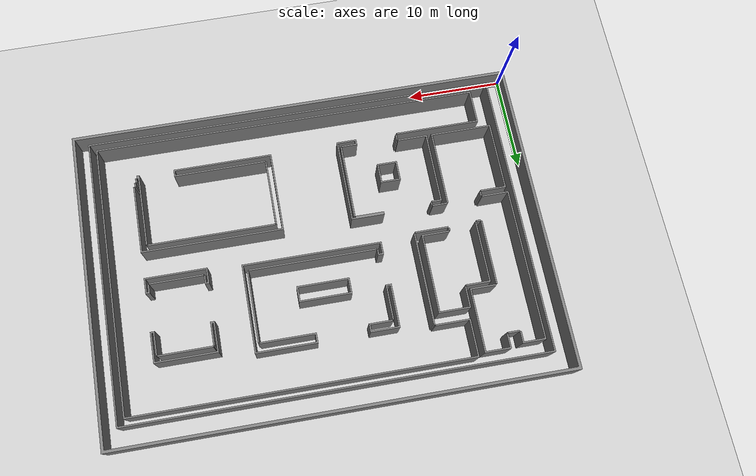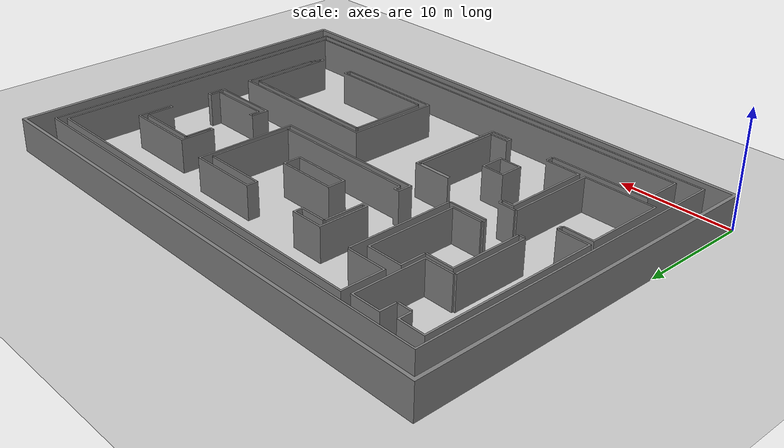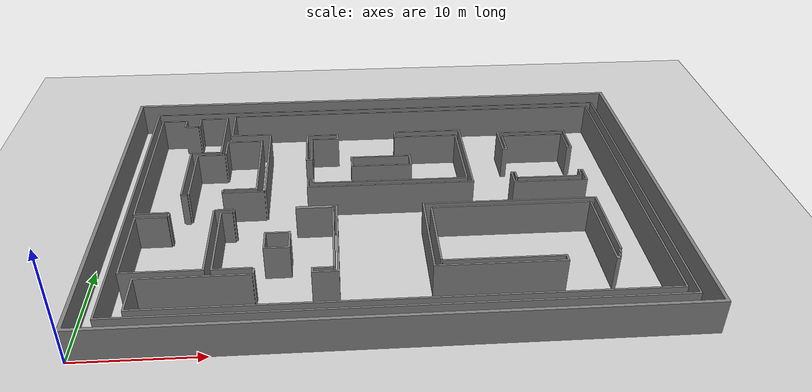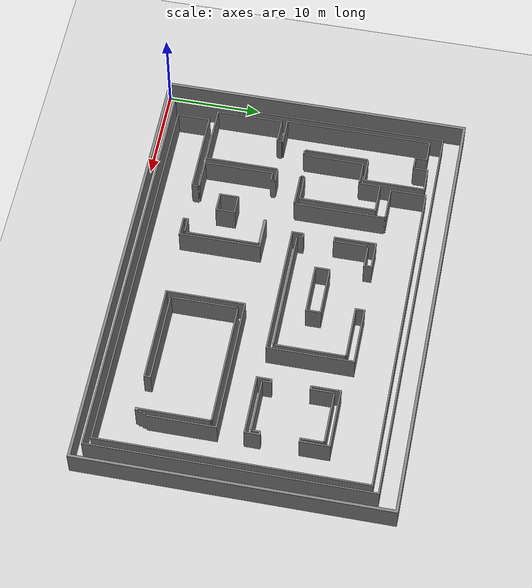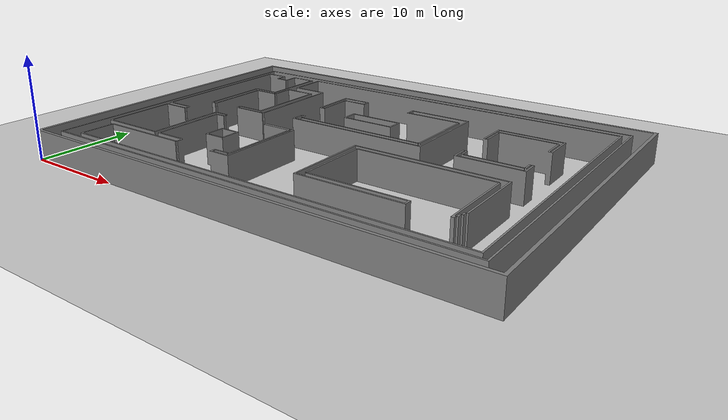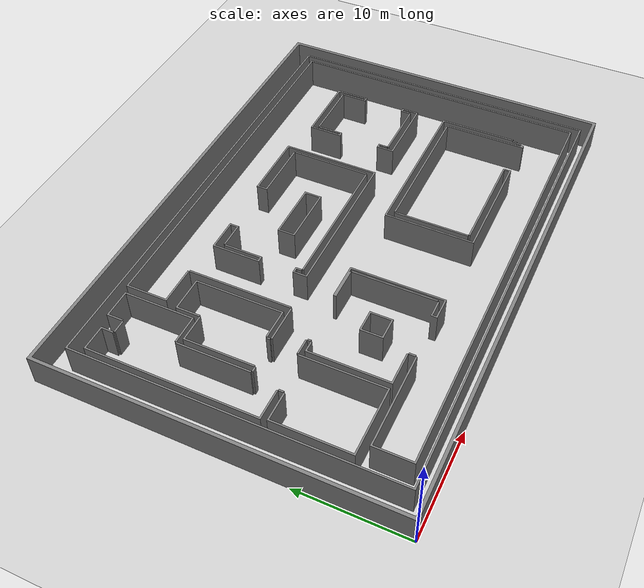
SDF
<sdf version="1.7">
 <world name="default">
  <light name="sun" type="directional">
   <pose>0 0 10 0 -0 0</pose>
   <diffuse>0.8 0.8 0.8 1</diffuse>
   <specular>0.2 0.2 0.2 1</specular>
   <attenuation>
    <range>1000</range>
    <constant>0.9</constant>
    <linear>0.01</linear>
    <quadratic>0.001</quadratic>
   </attenuation>
   <direction>-0.5 0.1 -0.9</direction>
   <spot><inner_angle>0</inner_angle><outer_angle>0</outer_angle><falloff>0</falloff></spot>
  </light>
  <model name="map">
   <link name="link">
    <inertial>
     <mass>15</mass>
     <inertia><ixx>0</ixx><ixy>0</ixy><ixz>0</ixz><iyy>0</iyy><iyz>0</iyz><izz>0</izz></inertia>
    </inertial>
    <collision name="collision">
     <geometry><mesh><uri>model://map/meshes/example.dae</uri></mesh></geometry>
    </collision>
    <visual name="visual">
     <geometry><mesh><uri>model://map/meshes/example.dae</uri></mesh></geometry>
     <material>
      <ambient>0.5 0.5 0.51 1</ambient>
      <diffuse>0.5 0.5 0.5 1</diffuse>
      <specular>0 0 0 0</specular>
      <emissive>0 0 0 1</emissive>
     </material>
    </visual>
   </link>
   <static>1</static>
  </model>
  <model name="my_ground_plane">
   <static>1</static>
   <link name="link">
    <collision name="collision">
     <pose>25 25 0 0 -0 0</pose>
     <geometry><plane><normal>0 0 1</normal><size>100 100</size></plane></geometry>
     <surface><friction><ode><mu>100</mu><mu2>50</mu2></ode></friction></surface>
    </collision>
    <visual name="visual">
     <cast_shadows>0</cast_shadows>
     <pose>25 25 0 0 -0 0</pose>
     <geometry><plane><normal>0 0 1</normal><size>100 100</size></plane></geometry>
     <material>
      <script>
       <uri>model://my_ground_plane/materials/scripts/my_ground_plane_rest.material</uri>
       <uri>model://my_ground_plane/materials/textures/</uri>
       <name>MyGroundPlaneRest/Image</name>
      </script>
     </material>
    </visual>
   </link>
  </model>
  <gravity>0 0 -9.8</gravity>
  <magnetic_field>6e-06 2.3e-05 -4.2e-05</magnetic_field>
  <atmosphere type="adiabatic"/>
  <physics type="ode">
   <max_step_size>0.001</max_step_size>
   <real_time_factor>1</real_time_factor>
   <real_time_update_rate>1000</real_time_update_rate>
  </physics>
  <scene><ambient>0.4 0.4 0.4 1</ambient><background>0.7 0.7 0.7 1</background><shadows>1</shadows></scene>
  <spherical_coordinates>
   <surface_model>EARTH_WGS84</surface_model>
   <latitude_deg>0</latitude_deg>
   <longitude_deg>0</longitude_deg>
   <elevation>0</elevation>
   <heading_deg>0</heading_deg>
  </spherical_coordinates>
 </world>
</sdf>
